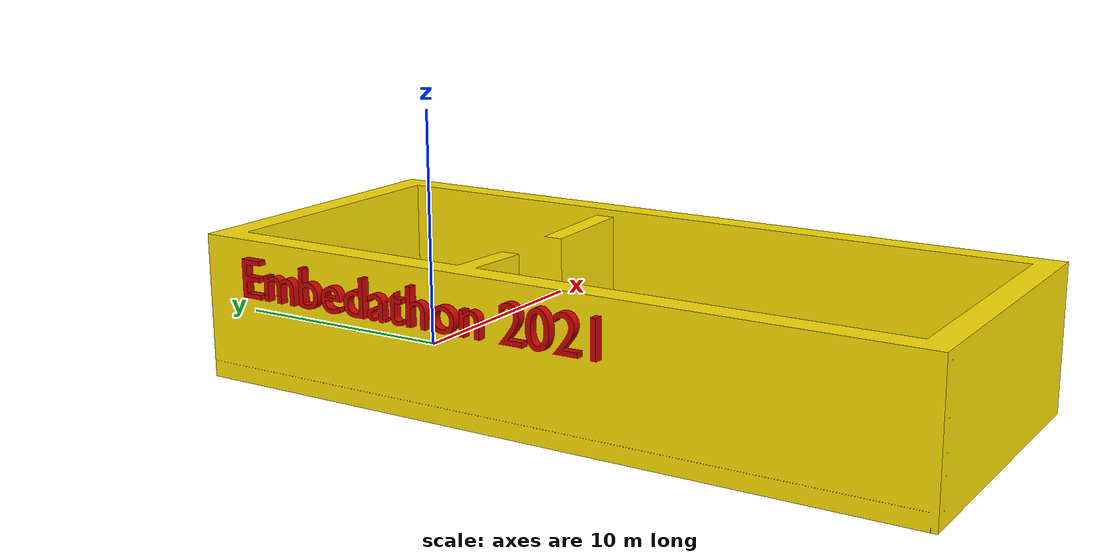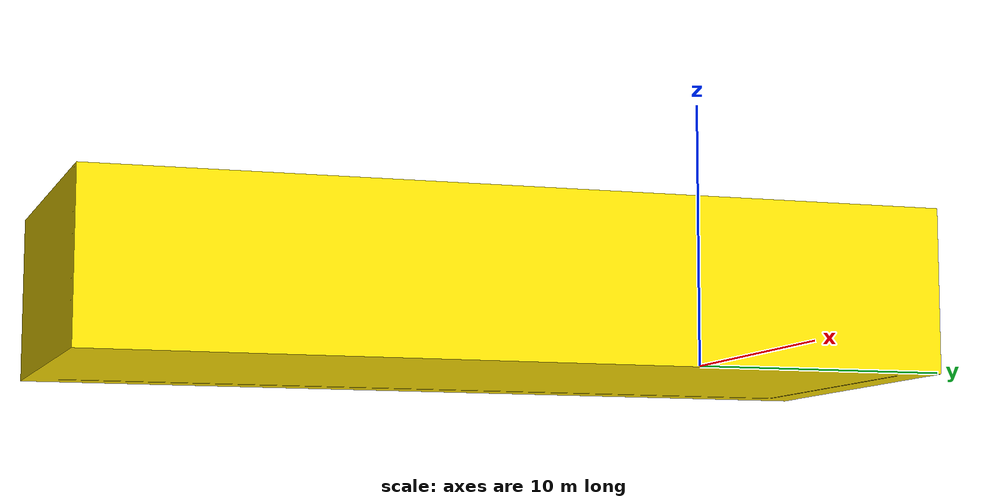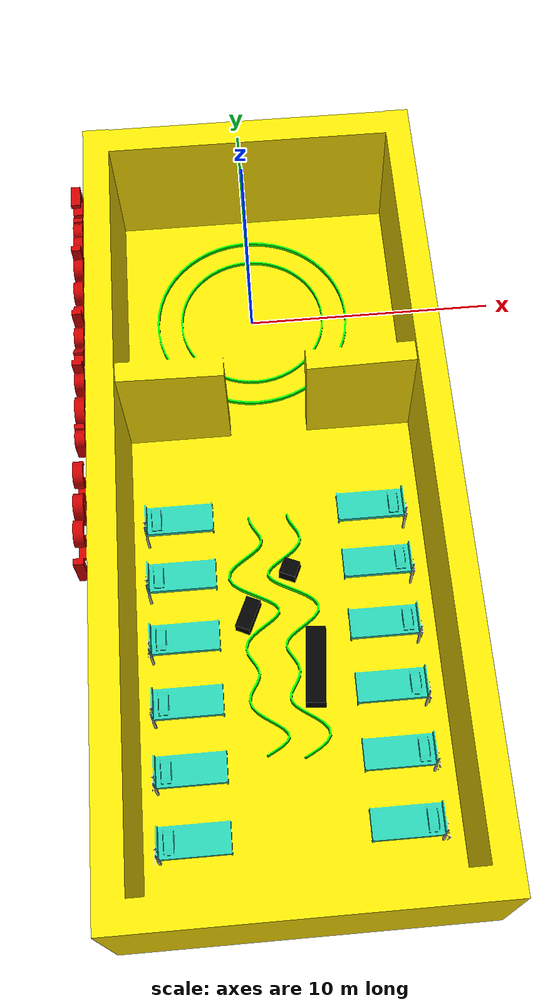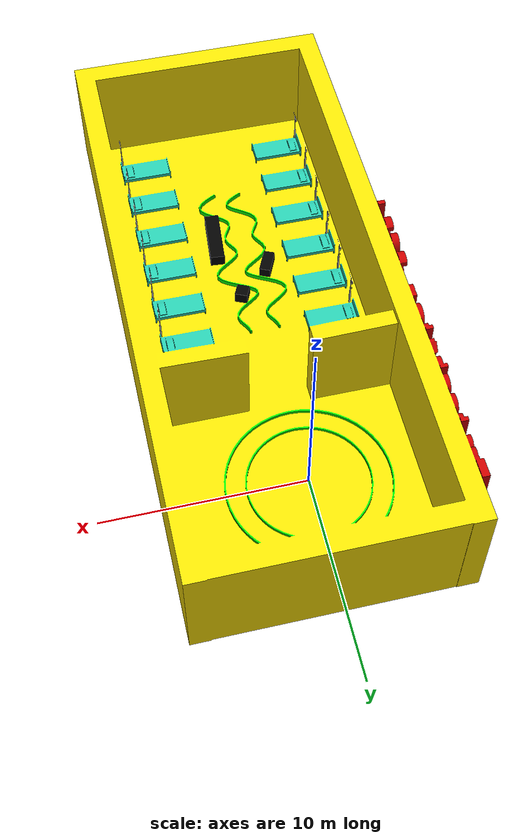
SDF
<?xml version ="1.0"?>
<sdf version="1.6">
  <model name="arena_task1_2">
    <pose>0 0 0  0 0 0</pose>
    <static>true</static>
    <link name="link">
      <collision name="colision1">
        <geometry>
          <mesh>
            <uri>model://arena_task1_2/meshes/Final_Map1.dae</uri>
            <scale>1 1 1</scale>
          </mesh>
        </geometry>
      </collision>

      <visual name="visual1">
        <cast_shadows>true</cast_shadows>
        <geometry>
          <mesh>
            <uri>model://arena_task1_2/meshes/Final_Map1.dae</uri>
            <scale>1 1 1</scale>
          </mesh>
        </geometry>
      </visual>

    </link>
  </model>
</sdf>
